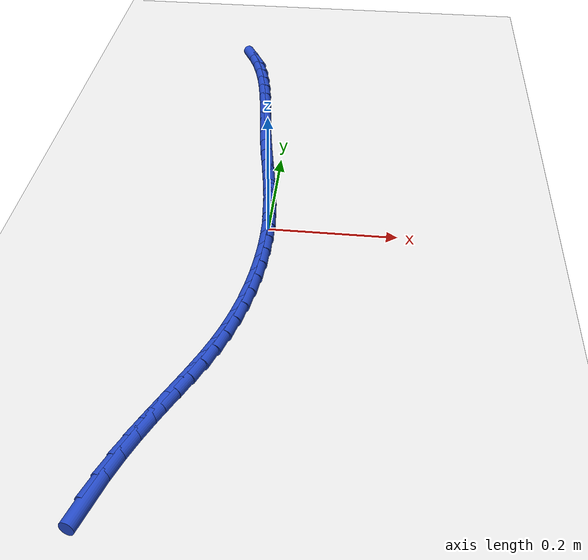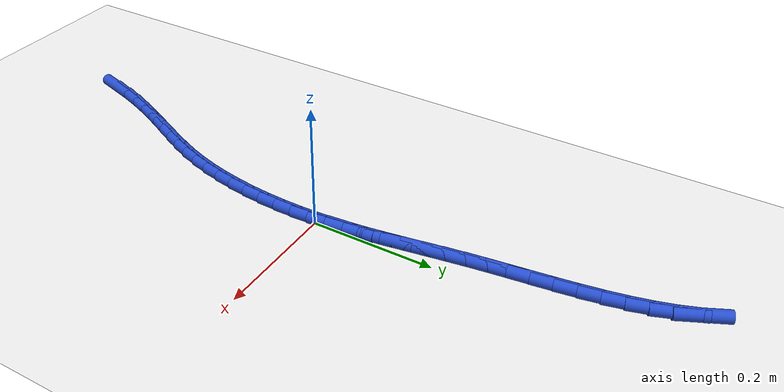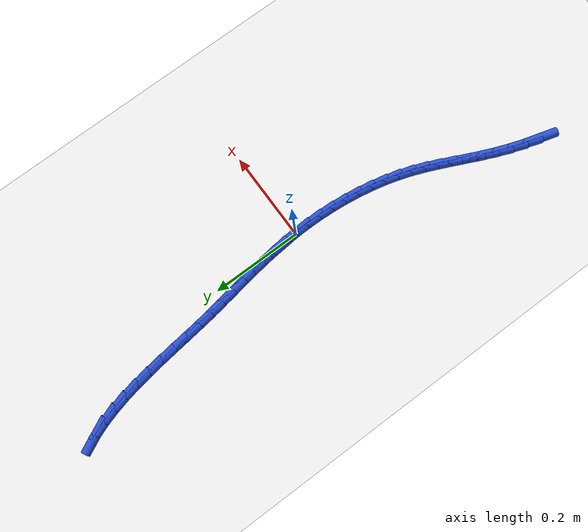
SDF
<sdf version="1.6">
 <world name="default">
  <model name="ground_plane">
   <static>1</static>
   <link name="link">
    <collision name="collision">
     <geometry><plane><normal>0 0 1</normal><size>100 100</size></plane></geometry>
     <surface><friction><ode><mu>100</mu><mu2>50</mu2></ode></friction></surface>
    </collision>
    <visual name="visual">
     <cast_shadows>0</cast_shadows>
     <geometry><plane><normal>0 0 1</normal><size>100 100</size></plane></geometry>
     <material>
      <script><uri>file://media/materials/scripts/gazebo.material</uri><name>Gazebo/WhiteGlow</name></script>
     </material>
    </visual>
   </link>
  </model>
  <model name="line">
   <link name="link_0">
    <pose>3.469446951953614e-18 6.938893903907228e-18 0.01 0 1.57 -1.5096084813208515</pose>
    <collision name="collision">
     <geometry><cylinder><radius>0.01</radius><length>0.08</length></cylinder></geometry>
    </collision>
    <visual name="visual">
     <material>
      <script><name>Gazebo/Blue</name><uri>file://media/materials/scripts/gazebo.material</uri></script>
     </material>
     <geometry><cylinder><radius>0.01</radius><length>0.08</length></cylinder></geometry>
    </visual>
   </link>
   <link name="link_1">
    <pose>-0.001852559912339359 0.03023880568668892 0.01 0 1.57 -1.4762304032931488</pose>
    <collision name="collision">
     <geometry><cylinder><radius>0.01</radius><length>0.08</length></cylinder></geometry>
    </collision>
    <visual name="visual">
     <material>
      <script><name>Gazebo/Blue</name><uri>file://media/materials/scripts/gazebo.material</uri></script>
     </material>
     <geometry><cylinder><radius>0.01</radius><length>0.08</length></cylinder></geometry>
    </visual>
   </link>
   <link name="link_2">
    <pose>-0.0046914120962163125 0.06016908799199582 0.01 0 1.57 -1.4493752729071308</pose>
    <collision name="collision">
     <geometry><cylinder><radius>0.01</radius><length>0.08</length></cylinder></geometry>
    </collision>
    <visual name="visual">
     <material>
      <script><name>Gazebo/Blue</name><uri>file://media/materials/scripts/gazebo.material</uri></script>
     </material>
     <geometry><cylinder><radius>0.01</radius><length>0.08</length></cylinder></geometry>
    </visual>
   </link>
   <link name="link_3">
    <pose>-0.008323980284288846 0.08993903943934645 0.01 0 1.57 -1.4294726162318496</pose>
    <collision name="collision">
     <geometry><cylinder><radius>0.01</radius><length>0.08</length></cylinder></geometry>
    </collision>
    <visual name="visual">
     <material>
      <script><name>Gazebo/Blue</name><uri>file://media/materials/scripts/gazebo.material</uri></script>
     </material>
     <geometry><cylinder><radius>0.01</radius><length>0.08</length></cylinder></geometry>
    </visual>
   </link>
   <link name="link_4">
    <pose>-0.012557688209214954 0.11969685255216661 0.01 0 1.57 -1.4167351201665477</pose>
    <collision name="collision">
     <geometry><cylinder><radius>0.01</radius><length>0.08</length></cylinder></geometry>
    </collision>
    <visual name="visual">
     <material>
      <script><name>Gazebo/Blue</name><uri>file://media/materials/scripts/gazebo.material</uri></script>
     </material>
     <geometry><cylinder><radius>0.01</radius><length>0.08</length></cylinder></geometry>
    </visual>
   </link>
   <link name="link_5">
    <pose>-0.017199959603652618 0.14959071985388206 0.01 0 1.57 -1.411179671405073</pose>
    <collision name="collision">
     <geometry><cylinder><radius>0.01</radius><length>0.08</length></cylinder></geometry>
    </collision>
    <visual name="visual">
     <material>
      <script><name>Gazebo/Blue</name><uri>file://media/materials/scripts/gazebo.material</uri></script>
     </material>
     <geometry><cylinder><radius>0.01</radius><length>0.08</length></cylinder></geometry>
    </visual>
   </link>
   <link name="link_6">
    <pose>-0.022058218200259827 0.17976883386791856 0.01 0 1.57 -1.4126513596155346</pose>
    <collision name="collision">
     <geometry><cylinder><radius>0.01</radius><length>0.08</length></cylinder></geometry>
    </collision>
    <visual name="visual">
     <material>
      <script><name>Gazebo/Blue</name><uri>file://media/materials/scripts/gazebo.material</uri></script>
     </material>
     <geometry><cylinder><radius>0.01</radius><length>0.08</length></cylinder></geometry>
    </visual>
   </link>
   <link name="link_7">
    <pose>-0.026939887731694565 0.21037938711770188 0.01 0 1.57 -1.420845924906378</pose>
    <collision name="collision">
     <geometry><cylinder><radius>0.01</radius><length>0.08</length></cylinder></geometry>
    </collision>
    <visual name="visual">
     <material>
      <script><name>Gazebo/Blue</name><uri>file://media/materials/scripts/gazebo.material</uri></script>
     </material>
     <geometry><cylinder><radius>0.01</radius><length>0.08</length></cylinder></geometry>
    </visual>
   </link>
   <link name="link_8">
    <pose>-0.03165239193061482 0.2415705721266577 0.01 0 1.57 -1.4350782630489296</pose>
    <collision name="collision">
     <geometry><cylinder><radius>0.01</radius><length>0.08</length></cylinder></geometry>
    </collision>
    <visual name="visual">
     <material>
      <script><name>Gazebo/Blue</name><uri>file://media/materials/scripts/gazebo.material</uri></script>
     </material>
     <geometry><cylinder><radius>0.01</radius><length>0.08</length></cylinder></geometry>
    </visual>
   </link>
   <link name="link_9">
    <pose>-0.036010395214238156 0.27348388558959497 0.01 0 1.57 -1.4479194386062304</pose>
    <collision name="collision">
     <geometry><cylinder><radius>0.01</radius><length>0.08</length></cylinder></geometry>
    </collision>
    <visual name="visual">
     <material>
      <script><name>Gazebo/Blue</name><uri>file://media/materials/scripts/gazebo.material</uri></script>
     </material>
     <geometry><cylinder><radius>0.01</radius><length>0.08</length></cylinder></geometry>
    </visual>
   </link>
   <link name="link_10">
    <pose>-0.040034766978417895 0.3060701359886892 0.01 0 1.57 -1.4518741688276657</pose>
    <collision name="collision">
     <geometry><cylinder><radius>0.01</radius><length>0.08</length></cylinder></geometry>
    </collision>
    <visual name="visual">
     <material>
      <script><name>Gazebo/Blue</name><uri>file://media/materials/scripts/gazebo.material</uri></script>
     </material>
     <geometry><cylinder><radius>0.01</radius><length>0.08</length></cylinder></geometry>
    </visual>
   </link>
   <link name="link_11">
    <pose>-0.043977371662708334 0.3390665189617418 0.01 0 1.57 -1.446935587223106</pose>
    <collision name="collision">
     <geometry><cylinder><radius>0.01</radius><length>0.08</length></cylinder></geometry>
    </collision>
    <visual name="visual">
     <material>
      <script><name>Gazebo/Blue</name><uri>file://media/materials/scripts/gazebo.material</uri></script>
     </material>
     <geometry><cylinder><radius>0.01</radius><length>0.08</length></cylinder></geometry>
    </visual>
   </link>
   <link name="link_12">
    <pose>-0.04810229244388441 0.3721989308599093 0.01 0 1.57 -1.4331241427845258</pose>
    <collision name="collision">
     <geometry><cylinder><radius>0.01</radius><length>0.08</length></cylinder></geometry>
    </collision>
    <visual name="visual">
     <material>
      <script><name>Gazebo/Blue</name><uri>file://media/materials/scripts/gazebo.material</uri></script>
     </material>
     <geometry><cylinder><radius>0.01</radius><length>0.08</length></cylinder></geometry>
    </visual>
   </link>
   <link name="link_13">
    <pose>-0.05267361249872108 0.4051932680343479 0.01 0 1.57 -1.4100871413520688</pose>
    <collision name="collision">
     <geometry><cylinder><radius>0.01</radius><length>0.08</length></cylinder></geometry>
    </collision>
    <visual name="visual">
     <material>
      <script><name>Gazebo/Blue</name><uri>file://media/materials/scripts/gazebo.material</uri></script>
     </material>
     <geometry><cylinder><radius>0.01</radius><length>0.08</length></cylinder></geometry>
    </visual>
   </link>
   <link name="link_14">
    <pose>-0.05795541500399326 0.43777542683621395 0.01 0 1.57 -1.3771056604337633</pose>
    <collision name="collision">
     <geometry><cylinder><radius>0.01</radius><length>0.08</length></cylinder></geometry>
    </collision>
    <visual name="visual">
     <material>
      <script><name>Gazebo/Blue</name><uri>file://media/materials/scripts/gazebo.material</uri></script>
     </material>
     <geometry><cylinder><radius>0.01</radius><length>0.08</length></cylinder></geometry>
    </visual>
   </link>
   <link name="link_15">
    <pose>-0.06421178313647594 0.4696713036166642 0.01 0 1.57 -1.3330976732777582</pose>
    <collision name="collision">
     <geometry><cylinder><radius>0.01</radius><length>0.08</length></cylinder></geometry>
    </collision>
    <visual name="visual">
     <material>
      <script><name>Gazebo/Blue</name><uri>file://media/materials/scripts/gazebo.material</uri></script>
     </material>
     <geometry><cylinder><radius>0.01</radius><length>0.08</length></cylinder></geometry>
    </visual>
   </link>
   <link name="link_16">
    <pose>-0.07170680007294399 0.5006067947268548 0.01 0 1.57 -1.2766405419950497</pose>
    <collision name="collision">
     <geometry><cylinder><radius>0.01</radius><length>0.08</length></cylinder></geometry>
    </collision>
    <visual name="visual">
     <material>
      <script><name>Gazebo/Blue</name><uri>file://media/materials/scripts/gazebo.material</uri></script>
     </material>
     <geometry><cylinder><radius>0.01</radius><length>0.08</length></cylinder></geometry>
    </visual>
   </link>
   <link name="link_17">
    <pose>-0.0807045489901724 0.5303077965179422 0.01 0 1.57 -1.2060556369249278</pose>
    <collision name="collision">
     <geometry><cylinder><radius>0.01</radius><length>0.08</length></cylinder></geometry>
    </collision>
    <visual name="visual">
     <material>
      <script><name>Gazebo/Blue</name><uri>file://media/materials/scripts/gazebo.material</uri></script>
     </material>
     <geometry><cylinder><radius>0.01</radius><length>0.08</length></cylinder></geometry>
    </visual>
   </link>
   <link name="link_18">
    <pose>-0.0914691130649361 0.558500205341083 0.01 0 1.57 -1.119626753373811</pose>
    <collision name="collision">
     <geometry><cylinder><radius>0.01</radius><length>0.08</length></cylinder></geometry>
    </collision>
    <visual name="visual">
     <material>
      <script><name>Gazebo/Blue</name><uri>file://media/materials/scripts/gazebo.material</uri></script>
     </material>
     <geometry><cylinder><radius>0.01</radius><length>0.08</length></cylinder></geometry>
    </visual>
   </link>
   <link name="link_222">
    <pose>-0.14288803300628478 -0.5309065572425126 0.01 0 1.57 1.288021758808384</pose>
    <collision name="collision">
     <geometry><cylinder><radius>0.01</radius><length>0.08</length></cylinder></geometry>
    </collision>
    <visual name="visual">
     <material>
      <script><name>Gazebo/Blue</name><uri>file://media/materials/scripts/gazebo.material</uri></script>
     </material>
     <geometry><cylinder><radius>0.01</radius><length>0.08</length></cylinder></geometry>
    </visual>
   </link>
   <link name="link_223">
    <pose>-0.1330775437994814 -0.4971425676193014 0.01 0 1.57 1.2403909748363888</pose>
    <collision name="collision">
     <geometry><cylinder><radius>0.01</radius><length>0.08</length></cylinder></geometry>
    </collision>
    <visual name="visual">
     <material>
      <script><name>Gazebo/Blue</name><uri>file://media/materials/scripts/gazebo.material</uri></script>
     </material>
     <geometry><cylinder><radius>0.01</radius><length>0.08</length></cylinder></geometry>
    </visual>
   </link>
   <link name="link_224">
    <pose>-0.1221874143949967 -0.4653908678118928 0.01 0 1.57 1.1974973248144605</pose>
    <collision name="collision">
     <geometry><cylinder><radius>0.01</radius><length>0.08</length></cylinder></geometry>
    </collision>
    <visual name="visual">
     <material>
      <script><name>Gazebo/Blue</name><uri>file://media/materials/scripts/gazebo.material</uri></script>
     </material>
     <geometry><cylinder><radius>0.01</radius><length>0.08</length></cylinder></geometry>
    </visual>
   </link>
   <link name="link_225">
    <pose>-0.11044025229128986 -0.4353978583482808 0.01 0 1.57 1.1644925545502582</pose>
    <collision name="collision">
     <geometry><cylinder><radius>0.01</radius><length>0.08</length></cylinder></geometry>
    </collision>
    <visual name="visual">
     <material>
      <script><name>Gazebo/Blue</name><uri>file://media/materials/scripts/gazebo.material</uri></script>
     </material>
     <geometry><cylinder><radius>0.01</radius><length>0.08</length></cylinder></geometry>
    </visual>
   </link>
   <link name="link_226">
    <pose>-0.09813242502805905 -0.40679122168263226 0.01 0 1.57 1.143266853646221</pose>
    <collision name="collision">
     <geometry><cylinder><radius>0.01</radius><length>0.08</length></cylinder></geometry>
    </collision>
    <visual name="visual">
     <material>
      <script><name>Gazebo/Blue</name><uri>file://media/materials/scripts/gazebo.material</uri></script>
     </material>
     <geometry><cylinder><radius>0.01</radius><length>0.08</length></cylinder></geometry>
    </visual>
   </link>
   <link name="link_227">
    <pose>-0.08556030014500259 -0.37919864026911465 0.01 0 1.57 1.1352972822513334</pose>
    <collision name="collision">
     <geometry><cylinder><radius>0.01</radius><length>0.08</length></cylinder></geometry>
    </collision>
    <visual name="visual">
     <material>
      <script><name>Gazebo/Blue</name><uri>file://media/materials/scripts/gazebo.material</uri></script>
     </material>
     <geometry><cylinder><radius>0.01</radius><length>0.08</length></cylinder></geometry>
    </visual>
   </link>
   <link name="link_228">
    <pose>-0.07302024518181867 -0.35224779656189487 0.01 0 1.57 1.1415721251417785</pose>
    <collision name="collision">
     <geometry><cylinder><radius>0.01</radius><length>0.08</length></cylinder></geometry>
    </collision>
    <visual name="visual">
     <material>
      <script><name>Gazebo/Blue</name><uri>file://media/materials/scripts/gazebo.material</uri></script>
     </material>
     <geometry><cylinder><radius>0.01</radius><length>0.08</length></cylinder></geometry>
    </visual>
   </link>
   <link name="link_229">
    <pose>-0.060808627678205565 -0.32556637301514013 0.01 0 1.57 1.1625087271909142</pose>
    <collision name="collision">
     <geometry><cylinder><radius>0.01</radius><length>0.08</length></cylinder></geometry>
    </collision>
    <visual name="visual">
     <material>
      <script><name>Gazebo/Blue</name><uri>file://media/materials/scripts/gazebo.material</uri></script>
     </material>
     <geometry><cylinder><radius>0.01</radius><length>0.08</length></cylinder></geometry>
    </visual>
   </link>
   <link name="link_230">
    <pose>-0.04922181517386122 -0.2987820520830169 0.01 0 1.57 1.1978447115058193</pose>
    <collision name="collision">
     <geometry><cylinder><radius>0.01</radius><length>0.08</length></cylinder></geometry>
    </collision>
    <visual name="visual">
     <material>
      <script><name>Gazebo/Blue</name><uri>file://media/materials/scripts/gazebo.material</uri></script>
     </material>
     <geometry><cylinder><radius>0.01</radius><length>0.08</length></cylinder></geometry>
    </visual>
   </link>
   <link name="link_231">
    <pose>-0.03855617520848448 -0.2715225162196936 0.01 0 1.57 1.246088111309054</pose>
    <collision name="collision">
     <geometry><cylinder><radius>0.01</radius><length>0.08</length></cylinder></geometry>
    </collision>
    <visual name="visual">
     <material>
      <script><name>Gazebo/Blue</name><uri>file://media/materials/scripts/gazebo.material</uri></script>
     </material>
     <geometry><cylinder><radius>0.01</radius><length>0.08</length></cylinder></geometry>
    </visual>
   </link>
   <link name="link_232">
    <pose>-0.02909960065111695 -0.24343002688638965 0.01 0 1.57 1.297860783475447</pose>
    <collision name="collision">
     <geometry><cylinder><radius>0.01</radius><length>0.08</length></cylinder></geometry>
    </collision>
    <visual name="visual">
     <material>
      <script><name>Gazebo/Blue</name><uri>file://media/materials/scripts/gazebo.material</uri></script>
     </material>
     <geometry><cylinder><radius>0.01</radius><length>0.08</length></cylinder></geometry>
    </visual>
   </link>
   <link name="link_233">
    <pose>-0.02097977084928289 -0.21442246145376687 0.01 0 1.57 1.3461991508243945</pose>
    <collision name="collision">
     <geometry><cylinder><radius>0.01</radius><length>0.08</length></cylinder></geometry>
    </collision>
    <visual name="visual">
     <material>
      <script><name>Gazebo/Blue</name><uri>file://media/materials/scripts/gazebo.material</uri></script>
     </material>
     <geometry><cylinder><radius>0.01</radius><length>0.08</length></cylinder></geometry>
    </visual>
   </link>
   <link name="link_234">
    <pose>-0.014181345520074762 -0.1846637344879507 0.01 0 1.57 1.391533054617911</pose>
    <collision name="collision">
     <geometry><cylinder><radius>0.01</radius><length>0.08</length></cylinder></geometry>
    </collision>
    <visual name="visual">
     <material>
      <script><name>Gazebo/Blue</name><uri>file://media/materials/scripts/gazebo.material</uri></script>
     </material>
     <geometry><cylinder><radius>0.01</radius><length>0.08</length></cylinder></geometry>
    </visual>
   </link>
   <link name="link_235">
    <pose>-0.008683962387243097 -0.15432639990865546 0.01 0 1.57 1.4344887838922427</pose>
    <collision name="collision">
     <geometry><cylinder><radius>0.01</radius><length>0.08</length></cylinder></geometry>
    </collision>
    <visual name="visual">
     <material>
      <script><name>Gazebo/Blue</name><uri>file://media/materials/scripts/gazebo.material</uri></script>
     </material>
     <geometry><cylinder><radius>0.01</radius><length>0.08</length></cylinder></geometry>
    </visual>
   </link>
   <link name="link_236">
    <pose>-0.004467259174538416 -0.12358301163559583 0.01 0 1.57 1.4756460899742183</pose>
    <collision name="collision">
     <geometry><cylinder><radius>0.01</radius><length>0.08</length></cylinder></geometry>
    </collision>
    <visual name="visual">
     <material>
      <script><name>Gazebo/Blue</name><uri>file://media/materials/scripts/gazebo.material</uri></script>
     </material>
     <geometry><cylinder><radius>0.01</radius><length>0.08</length></cylinder></geometry>
    </visual>
   </link>
   <link name="link_237">
    <pose>-0.0015108736057112418 -0.09260612358848602 0.01 0 1.57 1.5155513742361937</pose>
    <collision name="collision">
     <geometry><cylinder><radius>0.01</radius><length>0.08</length></cylinder></geometry>
    </collision>
    <visual name="visual">
     <material>
      <script><name>Gazebo/Blue</name><uri>file://media/materials/scripts/gazebo.material</uri></script>
     </material>
     <geometry><cylinder><radius>0.01</radius><length>0.08</length></cylinder></geometry>
    </visual>
   </link>
   <link name="link_238">
    <pose>0.00020555659548793454 -0.061568289687039854 0.01 0 1.57 1.5547324729034782</pose>
    <collision name="collision">
     <geometry><cylinder><radius>0.01</radius><length>0.08</length></cylinder></geometry>
    </collision>
    <visual name="visual">
     <material>
      <script><name>Gazebo/Blue</name><uri>file://media/materials/scripts/gazebo.material</uri></script>
     </material>
     <geometry><cylinder><radius>0.01</radius><length>0.08</length></cylinder></geometry>
    </visual>
   </link>
   <link name="link_239">
    <pose>0.0007023937053085025 -0.030642063850973313 0.01 0 1.57 -1.547877807827203</pose>
    <collision name="collision">
     <geometry><cylinder><radius>0.01</radius><length>0.08</length></cylinder></geometry>
    </collision>
    <visual name="visual">
     <material>
      <script><name>Gazebo/Blue</name><uri>file://media/materials/scripts/gazebo.material</uri></script>
     </material>
     <geometry><cylinder><radius>0.01</radius><length>0.08</length></cylinder></geometry>
    </visual>
   </link>
   <link name="link_240">
    <pose>-6.938893903907228e-18 -1.1102230246251565e-16 0.01 0 1.57 -1.5085531434775517</pose>
    <collision name="collision">
     <geometry><cylinder><radius>0.01</radius><length>0.08</length></cylinder></geometry>
    </collision>
    <visual name="visual">
     <material>
      <script><name>Gazebo/Blue</name><uri>file://media/materials/scripts/gazebo.material</uri></script>
     </material>
     <geometry><cylinder><radius>0.01</radius><length>0.08</length></cylinder></geometry>
    </visual>
   </link>
   <link name="link_241">
    <pose>-0.0018812622441881123 0.030185347946165314 0.01 0 1.57 -1.4683091774229893</pose>
    <collision name="collision">
     <geometry><cylinder><radius>0.01</radius><length>0.08</length></cylinder></geometry>
    </collision>
    <visual name="visual">
     <material>
      <script><name>Gazebo/Blue</name><uri>file://media/materials/scripts/gazebo.material</uri></script>
     </material>
     <geometry><cylinder><radius>0.01</radius><length>0.08</length></cylinder></geometry>
    </visual>
   </link>
   <link name="link_242">
    <pose>-0.0049210307510063386 0.05974142606780852 0.01 0 1.57 -1.4886097077165743</pose>
    <collision name="collision">
     <geometry><cylinder><radius>0.01</radius><length>0.08</length></cylinder></geometry>
    </collision>
    <visual name="visual">
     <material>
      <script><name>Gazebo/Blue</name><uri>file://media/materials/scripts/gazebo.material</uri></script>
     </material>
     <geometry><cylinder><radius>0.01</radius><length>0.08</length></cylinder></geometry>
    </visual>
   </link>
  </model>
 </world>
</sdf>
